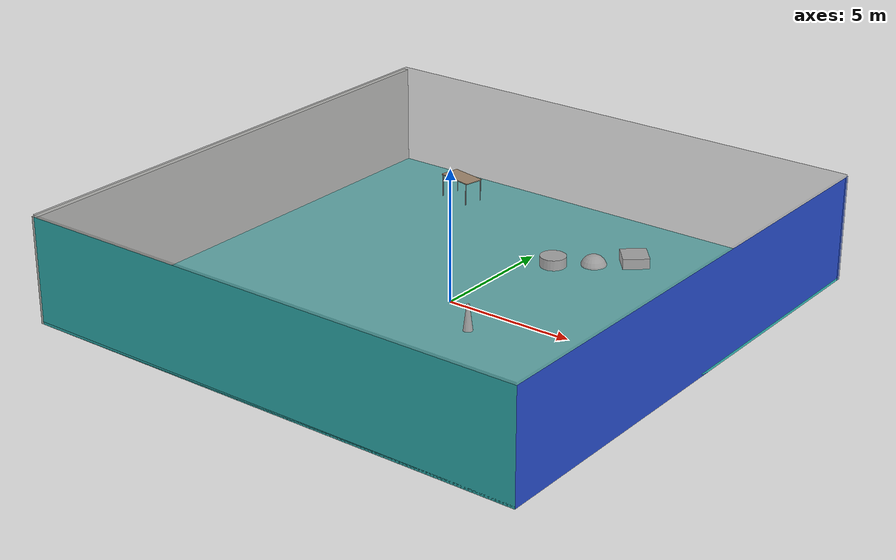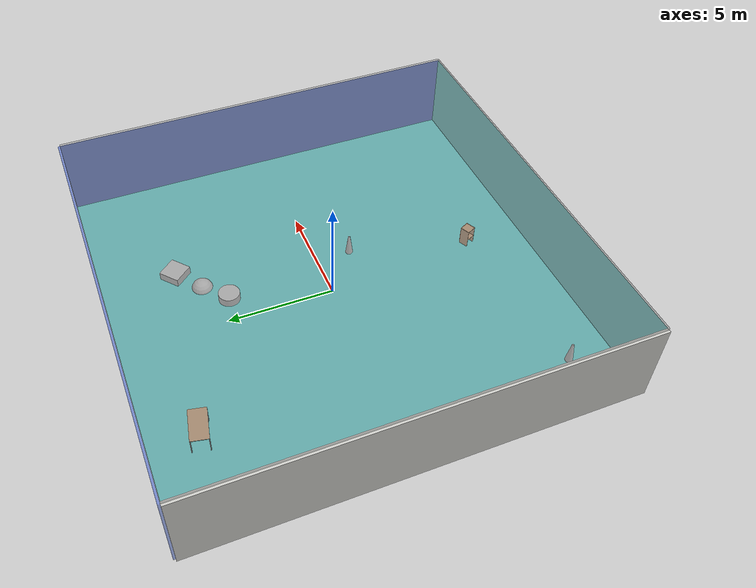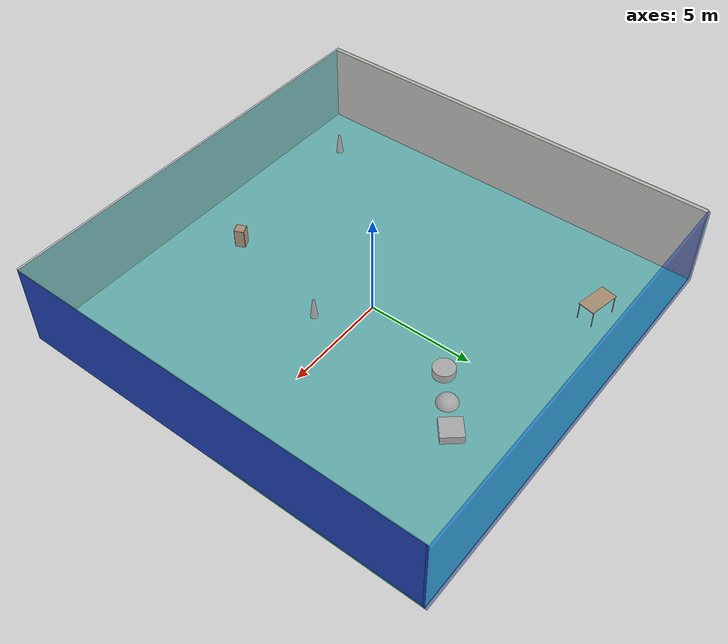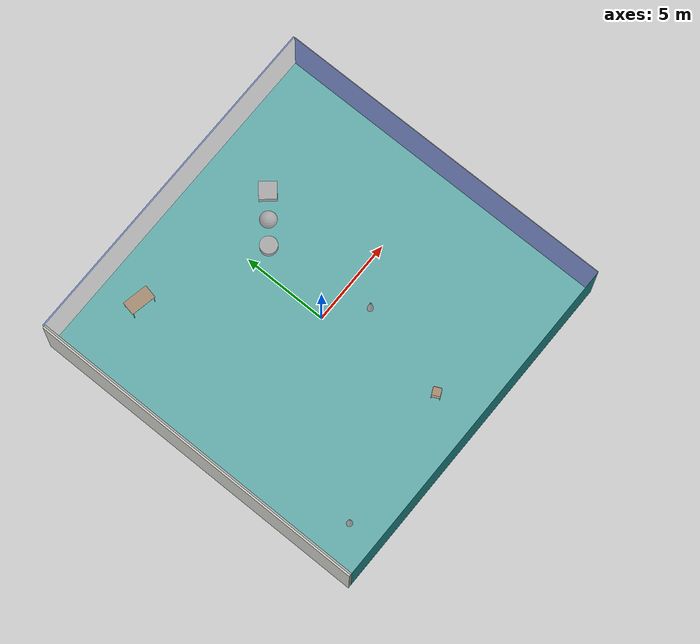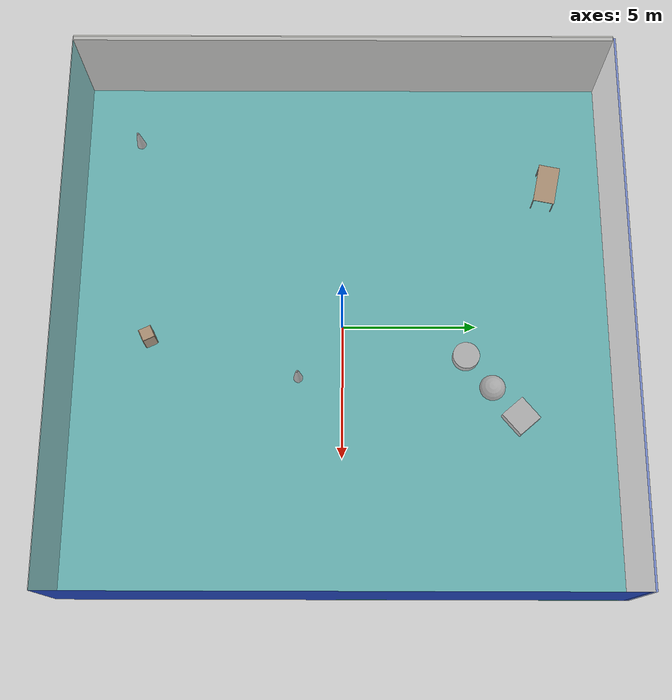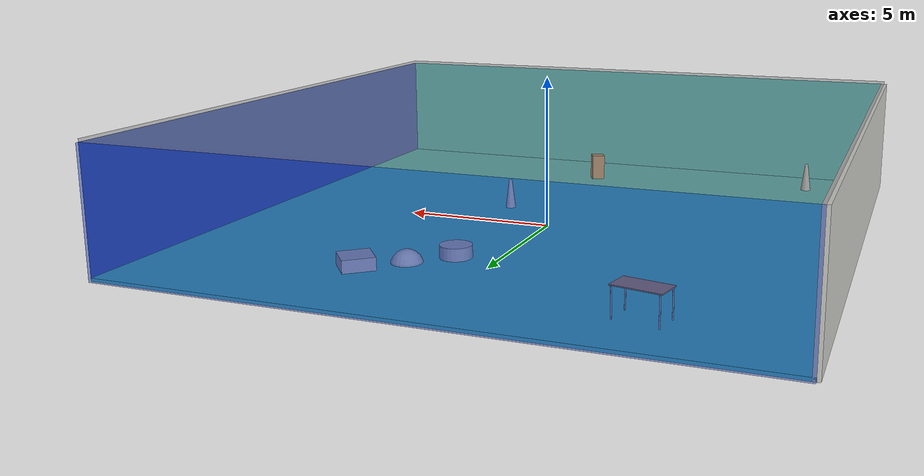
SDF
<sdf version="1.4">
 <world name="default">
  <physics type="ode">
   <max_step_size>0.001</max_step_size>
   <real_time_factor>1</real_time_factor>
   <real_time_update_rate>1000</real_time_update_rate>
   <gravity>0 0 -9.8</gravity>
  </physics>
  <scene><ambient>0.4 0.4 0.4 1</ambient><background>0.7 0.7 0.7 1</background><shadows>1</shadows></scene>
  <model name="Surrounding">
   <static>1</static>
   <link name="Ceiling">
    <collision name="Ceiling_Collision"><geometry><box><size>20 20 0.1</size></box></geometry></collision>
    <visual name="Ceiling_Visual">
     <geometry><box><size>20 20 0.1</size></box></geometry>
     <material>
      <script><uri>file://media/materials/scripts/gazebo.material</uri><name>Gazebo/GreyTransparent</name></script>
     </material>
    </visual>
    <pose>0 0 4.05 0 0 0</pose>
   </link>
   <link name="Wall_South">
    <collision name="Wall_South_Collision">
     <geometry><box><size>20 0 4</size></box></geometry>
     <pose>0 0 2 0 -0 0</pose>
    </collision>
    <visual name="Wall_South_Visual">
     <pose>0 0 2 0 -0 0</pose>
     <geometry><box><size>20 0 4</size></box></geometry>
     <material>
      <script>
       <uri>file://media/materials/scripts/gazebo.material</uri>
       <name>Gazebo/TurquoiseGlowOutline</name>
      </script>
     </material>
    </visual>
    <velocity_decay><linear>0</linear><angular>0</angular></velocity_decay>
    <pose>0 -10 0 0 -0 0</pose>
   </link>
   <link name="Wall_East">
    <collision name="Wall_21_Collision">
     <geometry><box><size>20 0 4</size></box></geometry>
     <pose>0 0 2 0 -0 0</pose>
    </collision>
    <visual name="Wall_21_Visual">
     <pose>0 0 2 0 -0 0</pose>
     <geometry><box><size>20 0 4</size></box></geometry>
     <material>
      <script><uri>file://media/materials/scripts/gazebo.material</uri><name>Gazebo/BlueLaser</name></script>
     </material>
    </visual>
    <velocity_decay><linear>0</linear><angular>0</angular></velocity_decay>
    <pose>10 0 0 0 -0 1.5708</pose>
   </link>
   <link name="Wall_North">
    <collision name="Wall_22_Collision">
     <geometry><box><size>20 0.2 4</size></box></geometry>
     <pose>0 0 2 0 -0 0</pose>
    </collision>
    <visual name="Wall_22_Visual">
     <pose>0 0 2 0 -0 0</pose>
     <geometry><box><size>20 0.2 4</size></box></geometry>
     <material>
      <script><uri>file://media/materials/scripts/gazebo.material</uri><name>Gazebo/BlueTransparent</name></script>
     </material>
    </visual>
    <velocity_decay><linear>0</linear><angular>0</angular></velocity_decay>
    <pose>0 10 0 0 -0 0</pose>
   </link>
   <link name="Wall_West">
    <collision name="Wall_23_Collision">
     <geometry><box><size>20 0.2 4</size></box></geometry>
     <pose>0 0 2 0 -0 0</pose>
    </collision>
    <visual name="Wall_23_Visual">
     <pose>0 0 2 0 -0 0</pose>
     <geometry><box><size>20 0.2 4</size></box></geometry>
     <material>
      <script><uri>file://media/materials/scripts/gazebo.material</uri><name>Gazebo/CeilingTiled</name></script>
     </material>
    </visual>
    <velocity_decay><linear>0</linear><angular>0</angular></velocity_decay>
    <pose>-10 0 0 0 0 -1.5708</pose>
   </link>
   <link name="Ground_link">
    <collision name="collision">
     <pose>0 0 .05 0 -0 0</pose>
     <geometry><box><size>20 20 0.1</size></box></geometry>
    </collision>
    <visual name="visual">
     <pose>0 0 .05 0 -0 0</pose>
     <geometry><box><size>20 20 0.1</size></box></geometry>
     <material>
      <script>
       <uri>file://media/materials/scripts/gazebo.material</uri>
       <name>Gazebo/TurquoiseGlowOutline</name>
      </script>
     </material>
    </visual>
   </link>
   <static>1</static>
  </model>
  <spherical_coordinates>
   <surface_model>EARTH_WGS84</surface_model>
   <latitude_deg>0</latitude_deg>
   <longitude_deg>0</longitude_deg>
   <elevation>0</elevation>
   <heading_deg>0</heading_deg>
  </spherical_coordinates>
  <light name="lightball_0" type="diffuse">
   <diffuse>0.8 0.8 0.8 1</diffuse>
   <specular>0.2 0.2 0.2 1</specular>
   <attenuation>
    <range>100</range>
    <constant>0.7</constant>
    <linear>0.01</linear>
    <quadratic>0.001</quadratic>
   </attenuation>
   <direction>-0.5 0.1 -0.9</direction>
   <pose>3.43313799937 4.91885643086 2.13467269385 0 0 0</pose>
  </light>
  <light name="lightball_1" type="diffuse">
   <diffuse>0.8 0.8 0.8 1</diffuse>
   <specular>0.2 0.2 0.2 1</specular>
   <attenuation>
    <range>100</range>
    <constant>0.7</constant>
    <linear>0.01</linear>
    <quadratic>0.001</quadratic>
   </attenuation>
   <direction>-0.5 0.1 -0.9</direction>
   <pose>9.19599759772 1.81493610687 2.87150846025 0 0 0</pose>
  </light>
  <light name="lightball_2" type="diffuse">
   <diffuse>0.8 0.8 0.8 1</diffuse>
   <specular>0.2 0.2 0.2 1</specular>
   <attenuation>
    <range>100</range>
    <constant>0.7</constant>
    <linear>0.01</linear>
    <quadratic>0.001</quadratic>
   </attenuation>
   <direction>-0.5 0.1 -0.9</direction>
   <pose>3.40907765831 -8.25217897466 1.5569398409 0 0 0</pose>
  </light>
  <light name="lightball_3" type="diffuse">
   <diffuse>0.8 0.8 0.8 1</diffuse>
   <specular>0.2 0.2 0.2 1</specular>
   <attenuation>
    <range>100</range>
    <constant>0.7</constant>
    <linear>0.01</linear>
    <quadratic>0.001</quadratic>
   </attenuation>
   <direction>-0.5 0.1 -0.9</direction>
   <pose>0.980438373438 -7.58510146152 0.566673242082 0 0 0</pose>
  </light>
  <light name="lightball_4" type="diffuse">
   <diffuse>0.8 0.8 0.8 1</diffuse>
   <specular>0.2 0.2 0.2 1</specular>
   <attenuation>
    <range>100</range>
    <constant>0.7</constant>
    <linear>0.01</linear>
    <quadratic>0.001</quadratic>
   </attenuation>
   <direction>-0.5 0.1 -0.9</direction>
   <pose>8.59815792478 -8.91828604009 3.49224527958 0 0 0</pose>
  </light>
  <light name="lightball_5" type="diffuse">
   <diffuse>0.8 0.8 0.8 1</diffuse>
   <specular>0.2 0.2 0.2 1</specular>
   <attenuation>
    <range>100</range>
    <constant>0.7</constant>
    <linear>0.01</linear>
    <quadratic>0.001</quadratic>
   </attenuation>
   <direction>-0.5 0.1 -0.9</direction>
   <pose>-8.85728862537 -3.69184676118 3.79391944027 0 0 0</pose>
  </light>
  <light name="lightball_6" type="diffuse">
   <diffuse>0.8 0.8 0.8 1</diffuse>
   <specular>0.2 0.2 0.2 1</specular>
   <attenuation>
    <range>100</range>
    <constant>0.7</constant>
    <linear>0.01</linear>
    <quadratic>0.001</quadratic>
   </attenuation>
   <direction>-0.5 0.1 -0.9</direction>
   <pose>2.33502076653 7.53295078362 3.21404405427 0 0 0</pose>
  </light>
  <include>
   <uri>model://construction_cone</uri>
   <pose>-7.49700036233 -7.95492825991 0 0 0 2.75959876761</pose>
  </include>
  <include><uri>model://table</uri><pose>-5.44399065789 7.81010517622 0 0 0 2.94131624426</pose></include>
  <include><uri>model://cabinet</uri><pose>0.540650730767 -7.20203463981 0 0 0 0.438817209934</pose></include>
  <include>
   <uri>model://construction_cone</uri>
   <pose>1.99782290946 -1.63335154873 0 0 0 1.32154634978</pose>
  </include>
  <include>
   <uri>model://textured_shapes</uri>
   <pose>2.35439528079 5.56670075054 0 0 0 2.27613781222</pose>
  </include>
 </world>
</sdf>

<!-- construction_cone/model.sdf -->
<sdf version="1.5">
  <model name="Construction Cone">
    <link name="link">
      <collision name="collision">
        <geometry>
          <mesh>
            <scale>10 10 10</scale>
            <uri>file://isr-testbed/construction_cone/meshes/construction_cone.dae</uri>
          </mesh>
        </geometry>
      </collision>
      <visual name="visual">
        <geometry>
          <mesh>
            <scale>10 10 10</scale>
            <uri>file://isr-testbed/construction_cone/meshes/construction_cone.dae</uri>
          </mesh>
        </geometry>
      </visual>
    </link>
  </model>
</sdf>

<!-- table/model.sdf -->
<sdf version="1.5">
  <model name="table">
    <static>true</static>
    <link name="link">
      <collision name="surface">
        <pose>0 0 1.0 0 0 0</pose>
        <geometry>
          <box>
            <size>1.5 0.8 0.03</size>
          </box>
        </geometry>
        <surface>
          <friction>
            <ode>
              <mu>0.6</mu>
              <mu2>0.6</mu2>
            </ode>
          </friction>
        </surface>
      </collision>
      <visual name="visual1">
        <pose>0 0 1.0 0 0 0</pose>
        <geometry>
          <box>
            <size>1.5 0.8 0.03</size>
          </box>
        </geometry>
        <material>
          <script>
            <uri>model://media/materials/scripts/gazebo.material</uri>
            <name>Gazebo/Wood</name>
          </script>
        </material>
      </visual>
      <collision name="front_left_leg">
        <pose>0.68 0.38 0.5 0 0 0</pose>
        <geometry>
          <cylinder>
            <radius>0.02</radius>
            <length>1.0</length>
          </cylinder>
        </geometry>
      </collision>
      <visual name="front_left_leg">
        <pose>0.68 0.38 0.5 0 0 0</pose>
        <geometry>
          <cylinder>
            <radius>0.02</radius>
            <length>1.0</length>
          </cylinder>
        </geometry>
        <material>
          <script>
            <uri>model://media/materials/scripts/gazebo.material</uri>
            <name>Gazebo/Grey</name>
          </script>
        </material>
      </visual>
      <collision name="front_right_leg">
        <pose>0.68 -0.38 0.5 0 0 0</pose>
        <geometry>
          <cylinder>
            <radius>0.02</radius>
            <length>1.0</length>
          </cylinder>
        </geometry>
      </collision>
      <visual name="front_right_leg">
        <pose>0.68 -0.38 0.5 0 0 0</pose>
        <geometry>
          <cylinder>
            <radius>0.02</radius>
            <length>1.0</length>
          </cylinder>
        </geometry>
        <material>
          <script>
            <uri>model://media/materials/scripts/gazebo.material</uri>
            <name>Gazebo/Grey</name>
          </script>
        </material>
      </visual>
      <collision name="back_right_leg">
        <pose>-0.68 -0.38 0.5 0 0 0</pose>
        <geometry>
          <cylinder>
            <radius>0.02</radius>
            <length>1.0</length>
          </cylinder>
        </geometry>
      </collision>
      <visual name="back_right_leg">
        <pose>-0.68 -0.38 0.5 0 0 0</pose>
        <geometry>
          <cylinder>
            <radius>0.02</radius>
            <length>1.0</length>
          </cylinder>
        </geometry>
        <material>
          <script>
            <uri>model://media/materials/scripts/gazebo.material</uri>
            <name>Gazebo/Grey</name>
          </script>
        </material>
      </visual>
      <collision name="back_left_leg">
        <pose>-0.68 0.38 0.5 0 0 0</pose>
        <geometry>
          <cylinder>
            <radius>0.02</radius>
            <length>1.0</length>
          </cylinder>
        </geometry>
      </collision>
      <visual name="back_left_leg">
        <pose>-0.68 0.38 0.5 0 0 0</pose>
        <geometry>
          <cylinder>
            <radius>0.02</radius>
            <length>1.0</length>
          </cylinder>
        </geometry>
        <material>
          <script>
            <uri>model://media/materials/scripts/gazebo.material</uri>
            <name>Gazebo/Grey</name>
          </script>
        </material>
      </visual>
    </link>
  </model>
</sdf>

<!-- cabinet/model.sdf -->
<sdf version="1.5">
  <model name="cabinet">
    <static>true</static>
    <link name="cabinet_bottom_plate">
      <inertial>
        <pose>0 0 -1 0 0 0</pose>
        <inertia>
          <ixx>2.050000</ixx>
          <ixy>0</ixy>
          <ixz>0</ixz>
          <iyy>2.050000</iyy>
          <iyz>0</iyz>
          <izz>2.050000</izz>
        </inertia>
        <mass>25.000000</mass>
      </inertial>
      <collision name="cabinet_bottom_plate_geom">
        <pose>0 0 0.010000 0 0 0</pose>
        <geometry>
          <box>
            <size>0.450000 0.450000 0.020000</size>
          </box>
        </geometry>
      </collision>
      <visual name="cabinet_bottom_plate_geom_visual">
        <pose>0 0 0.010000 0 0 0</pose>
        <geometry>
          <box>
            <size>0.450000 0.450000 0.020000</size>
          </box>
        </geometry>
        <material>
          <script>
            <uri>model://media/materials/scripts/gazebo.material</uri>
            <name>Gazebo/Wood</name>
          </script>
        </material>
      </visual>
      <collision name="cabinet_bottom_plate_geom_cabinet_back_plate">
        <pose>0.235000 0 0.510000 0 0 0</pose>
        <geometry>
          <box>
            <size>0.020000 0.450000 1.020000</size>
          </box>
        </geometry>
      </collision>
      <visual name="cabinet_bottom_plate_geom_cabinet_back_plate_visual">
        <pose>0.235000 0 0.510000 0 0 0</pose>
        <geometry>
          <box>
            <size>0.020000 0.450000 1.020000</size>
          </box>
        </geometry>
        <material>
          <script>
            <uri>model://media/materials/scripts/gazebo.material</uri>
            <name>Gazebo/Wood</name>
          </script>
        </material>
      </visual>
      <collision name="cabinet_bottom_plate_geom_cabinet_left_plate">
        <pose>0 0.235000 0.510000 0 0 0</pose>
        <geometry>
          <box>
            <size>0.450000 0.020000 1.020000</size>
          </box>
        </geometry>
      </collision>
      <visual name="cabinet_bottom_plate_geom_cabinet_left_plate_visual">
        <pose>0 0.235000 0.510000 0 0 0</pose>
        <geometry>
          <box>
            <size>0.450000 0.020000 1.020000</size>
          </box>
        </geometry>
        <material>
          <script>
            <uri>model://media/materials/scripts/gazebo.material</uri>
            <name>Gazebo/Wood</name>
          </script>
        </material>
      </visual>
      <collision name="cabinet_bottom_plate_geom_cabinet_middle_plate">
        <pose>0 0 0.510000 0 0 0</pose>
        <geometry>
          <box>
            <size>0.450000 0.450000 0.020000</size>
          </box>
        </geometry>
      </collision>
      <visual name="cabinet_bottom_plate_geom_cabinet_middle_plate_visual">
        <pose>0 0 0.510000 0 0 0</pose>
        <geometry>
          <box>
            <size>0.450000 0.450000 0.020000</size>
          </box>
        </geometry>
        <material>
          <script>
            <uri>model://media/materials/scripts/gazebo.material</uri>
            <name>Gazebo/Wood</name>
          </script>
        </material>
      </visual>
      <collision name="cabinet_bottom_plate_geom_cabinet_right_plate">
        <pose>0 -0.235000 0.510000 0 0 0</pose>
        <geometry>
          <box>
            <size>0.450000 0.020000 1.020000</size>
          </box>
        </geometry>
      </collision>
      <visual name="cabinet_bottom_plate_geom_cabinet_right_plate_visual">
        <pose>0 -0.235000 0.510000 0 0 0</pose>
        <geometry>
          <box>
            <size>0.450000 0.020000 1.020000</size>
          </box>
        </geometry>
        <material>
          <script>
            <uri>model://media/materials/scripts/gazebo.material</uri>
            <name>Gazebo/Wood</name>
          </script>
        </material>
      </visual>
      <collision name="cabinet_bottom_plate_geom_cabinet_top_plate">
        <pose>0 0 1.010000 0 0 0</pose>
        <geometry>
          <box>
            <size>0.450000 0.450000 0.020000</size>
          </box>
        </geometry>
      </collision>
      <visual name="cabinet_bottom_plate_geom_cabinet_top_plate_visual">
        <pose>0 0 1.010000 0 0 0</pose>
        <geometry>
          <box>
            <size>0.450000 0.450000 0.020000</size>
          </box>
        </geometry>
        <material>
          <script>
            <uri>model://media/materials/scripts/gazebo.material</uri>
            <name>Gazebo/Wood</name>
          </script>
        </material>
      </visual>
    </link>
  </model>
</sdf>

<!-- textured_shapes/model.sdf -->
<sdf version="1.6">
  <model name="textured_shapes">
    <pose>0 0 0.5 0 0 0</pose>
    <link name="box">
      <pose>0 -1.5 0 0 0 0</pose>
      <collision name="collision">
        <geometry>
          <box>
            <size>1 1 1</size>
          </box>
        </geometry>
      </collision>
      <visual name="visual">
        <geometry>
          <box>
            <size>1 1 1</size>
          </box>
        </geometry>
        <material>
          <script>
            <uri>model://../model_source/models/textured_shapes/materials/scripts</uri>
            <uri>model://../model_source/models/textured_shapes/materials/textures</uri>
            <name>TexturedShape/Squares</name>
          </script>
        </material>
      </visual>
    </link>
    <link name="sphere">
      <collision name="collision">
        <geometry>
          <sphere>
            <radius>0.5</radius>
          </sphere>
        </geometry>
      </collision>
      <visual name="visual">
        <geometry>
          <sphere>
            <radius>0.5</radius>
          </sphere>
        </geometry>
        <material>
          <script>
            <uri>model://../model_source/models/textured_shapes/materials/scripts</uri>
            <uri>model://../model_source/models/textured_shapes/materials/textures</uri>
            <name>TexturedShape/Squares</name>
          </script>
        </material>
      </visual>
    </link>
    <link name="cylinder">
      <pose>0 1.5 0 0 0 0</pose>
      <collision name="collision">
        <geometry>
          <cylinder>
            <radius>0.5</radius>
            <length>1</length>
          </cylinder>
        </geometry>
      </collision>
      <visual name="visual">
        <geometry>
          <cylinder>
            <radius>0.5</radius>
            <length>1</length>
          </cylinder>
        </geometry>
        <material>
          <script>
            <uri>model://../model_source/models/textured_shapes/materials/scripts</uri>
            <uri>model://../model_source/models/textured_shapes/materials/textures</uri>
            <name>TexturedShape/Squares</name>
          </script>
        </material>
      </visual>
    </link>
  </model>
</sdf>
